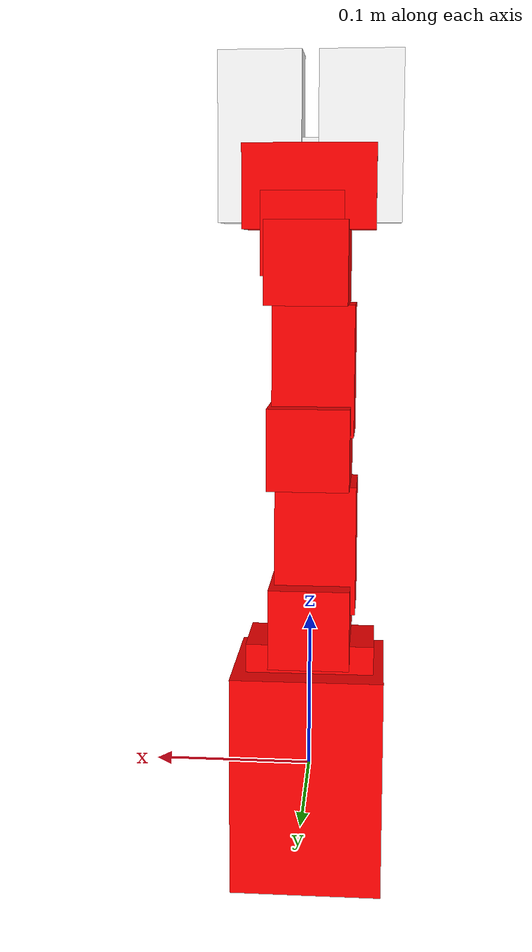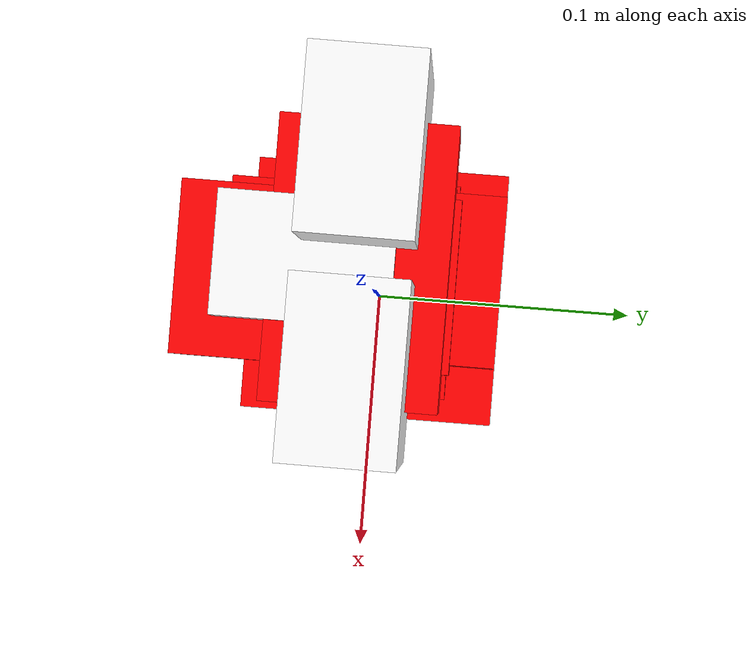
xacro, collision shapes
<?xml version="1.0"?>
<robot xmlns:xacro="http://www.ros.org/wiki/xacro" name="arm">

  <xacro:include filename="$(find armando_description)/urdf/armando_hardware_interface.xacro"/>
  <xacro:include filename="$(find armando_gazebo)/urdf/armando_camera.xacro"/>

  <material name="red">
    <color rgba="1 0 0 1"/>
  </material>

  <material name="white">
    <color rgba="1 1 1 1"/>
  </material>

  <link name="base_link">
    <visual>
      <geometry>
        <mesh filename="package://armando_description/meshes/base_link.stl" scale="0.001 0.001 0.001"/>
      </geometry>
      <origin rpy="0 0 0" xyz="0 0 0"/>
      <material name="red"/>
    </visual>
    <collision>
     <geometry>
      <box size="0.095 0.095 0.14"/>
     </geometry>
      <origin rpy="0 0 0" xyz="0 0 0"/>
    </collision>
    <inertial>
      <mass value="0.1"/>
      <inertia ixx="1.06682889e+08" ixy="0.0" ixz="0.0" iyy="9.92165844e+07" iyz="0.0" izz="1.26939175e+08"/>
    </inertial>
  </link>

  <joint name="base_1_2" type="fixed">
    <parent link="base_link"/>
    <child link="base_turn"/>
    <origin xyz="-0.0011 -0.011 0.05"/>
  </joint>

  <link name="base_turn">
    <visual>
      <geometry>
        <mesh filename="package://armando_description/meshes/base_turn.stl" scale="0.001 0.001 0.001"/>
      </geometry>
      <origin rpy="0 0 0" xyz="0 0 0"/>
      <material name="red"/>
    </visual>
    <collision>
     <geometry>
      <box size="0.05 0.08 0.05"/>
     </geometry>
     <origin rpy="0 0 0" xyz="0 0 0"/>
    </collision>
    <inertial>
      <mass value="0.1"/>
      <inertia ixx="1.35223008e+07" ixy="0.0" ixz="0.0" iyy="8.13814925e+06" iyz="0.0" izz="2.14903814e+07"/>
    </inertial>
  </link>

  <joint name="j0" type="revolute">
    <parent link="base_turn"/>
    <child link="base_turn_rot"/>
    <origin xyz="-0.0 0.0155 0.013" rpy = "0 0 -1.57"/>
    <axis xyz="0 0 1" />
    <limit effort="300" velocity="0.1" lower="-2.57" upper="2.57"/>
  </joint>

  <link name="base_turn_rot">
    <visual>
      <geometry>
        <mesh filename="package://armando_description/meshes/base_turn_table_rot.stl" scale="0.001 0.001 0.001"/>
      </geometry>
      <material name="red"/>
    </visual>
    <collision>
     <geometry>
      <box size="0.05 0.08 0.05"/>
     </geometry>
     <origin rpy="0 0 0" xyz="0 0 0"/>
    </collision>
    <inertial>
      <mass value="0.1"/>
      <inertia ixx="0.001" ixy="0.0" ixz="0.0" iyy="0.001" iyz="0.0" izz="0.001"/>
    </inertial>
  </link>

  <joint name="base_turn_rot_dyn2" type="fixed">
    <parent link="base_turn_rot"/>
    <child link="dyn2"/>
    <origin xyz="0 0 0.0385" rpy="0 1.57 1.57 "/>
  </joint>

  <link name="dyn2">
    <visual>
      <geometry>
        <mesh filename="package://armando_description/meshes/dyn.stl" scale="0.01 0.01 0.01"/>
      </geometry>
      <origin rpy="0 0 0" xyz="0 0 0"/>
      <material name="red"/>
    </visual>
    <collision>
     <geometry>
      <box size="0.05 0.08 0.05"/>
     </geometry>
     <origin rpy="0 0 0" xyz="0 0 0"/>
    </collision>
     <inertial>
      <mass value="0.1"/>
      <inertia ixx="6.90013881e-05" ixy="0.0" ixz="0.0" iyy="1.24554875e-04" iyz="0.0" izz="1.04295793e-04"/>
    </inertial>
  </link>

  <joint name="j1" type="revolute">
    <parent link="dyn2"/>
    <child link="dyn2_r"/>
    <origin xyz="0 0 0.0" rpy="0 0 0"/>
    <axis xyz="0 0 1" />
    <limit effort="300" velocity="0.1" lower="-3.14" upper="3.14"/>
  </joint>

  <link name="dyn2_r">
    <inertial>
      <mass value="0.0001" />
      <inertia ixx="1e-6" ixy="0" ixz="0" iyy="1e-6" iyz="0" izz="1e-6" />
    </inertial>
  </link>

  <joint name="dyn2_f4" type="fixed">
    <parent link="dyn2_r"/>
    <child link="f4"/>
    <origin xyz="-0.047 0.0 -0.003" rpy="0 1.57 1.57"/>
  </joint>

  <link name="f4">
    <visual>
      <geometry>
        <mesh filename="package://armando_description/meshes/f4_n_f3.stl" scale="0.001 0.001 0.001"/>
      </geometry>
      <origin rpy="0 0 0" xyz="0 0 0"/>
      <material name="red"/>
    </visual>
    <collision>
     <geometry>
      <box size="0.05 0.08 0.05"/>
     </geometry>
     <origin rpy="0 0 0" xyz="0 0 0"/>
    </collision>
     <inertial>
      <mass value="0.1"/>
      <inertia ixx="6.90013881e-05" ixy="0.0" ixz="0.0" iyy="1.24554875e-04" iyz="0.0" izz="1.04295793e-04"/>
    </inertial>
  </link>

  <joint name="d4_dyn3" type="fixed">
    <parent link="f4"/>
    <child link="dyn3"/>
    <origin xyz="-0.004 0.0645 0 " rpy="-1.57 3.14 1.57"/>
  </joint>

  <link name="dyn3">
    <visual>
      <geometry>
        <mesh filename="package://armando_description/meshes/dyn.stl" scale="0.01 0.01 0.01"/>
      </geometry>
      <origin rpy="0 0 0" xyz="0 0 0"/>
      <material name="red"/>
    </visual>
    <collision>
     <geometry>
      <box size="0.05 0.08 0.05"/>
     </geometry>
     <origin rpy="0 0 0" xyz="0 0 0"/>
    </collision>
     <inertial>
      <mass value="0.1"/>
      <inertia ixx="6.90013881e-05" ixy="0.0" ixz="0.0" iyy="1.24554875e-04" iyz="0.0" izz="1.04295793e-04"/>
    </inertial>
  </link>

  <joint name="j2" type="revolute">
    <parent link="dyn3"/>
    <child link="dyn3_r"/>
    <origin xyz="0 0 0.0" rpy="0 0 0"/>
    <axis xyz="0 0 1" />
    <limit effort="300" velocity="0.1" lower="-3.14" upper="3.14"/>
  </joint>

 <link name="dyn3_r">
    <inertial>
      <mass value="0.0001" />
      <inertia ixx="1e-6" ixy="0" ixz="0" iyy="1e-6" iyz="0" izz="1e-6" />
    </inertial>
  </link>

  <joint name="dyn3_f5" type="fixed">
    <parent link="dyn3_r"/>
    <child link="f5"/>
    <origin xyz="-0.046 -0.0 -0.002" rpy="1.57 1.57 3.1415 "/>
  </joint>

  <link name="f5">
    <visual>
      <geometry>
        <mesh filename="package://armando_description/meshes/f4_n_f3.stl" scale="0.001 0.001 0.001"/>
      </geometry>
      <origin rpy="0 0 0" xyz="0 0 0"/>
      <material name="red"/>
    </visual>
    <collision>
     <geometry>
      <box size="0.05 0.08 0.05"/>
     </geometry>
     <origin rpy="0 0 0" xyz="0 0 0"/>
    </collision>
    <inertial>
      <mass value="0.1"/>
      <inertia ixx="0.001" ixy="0.0" ixz="0.0" iyy="0.001" iyz="0.0" izz="0.001"/>
    </inertial>
  </link>

  <joint name="f5_dyn4" type="fixed">
    <parent link="f5"/>
    <child link="dyn4"/>
    <origin xyz="-0.004 0.065 -0.0" rpy="-1.57 3.1415 1.57 "/>
  </joint>

  <link name="dyn4">
    <visual>
      <geometry>
        <mesh filename="package://armando_description/meshes/dyn.stl" scale="0.01 0.01 0.01"/>
      </geometry>
      <origin rpy="0 0 0" xyz="0 0 0"/>
      <material name="red"/>
    </visual>
    <collision>
     <geometry>
      <box size="0.05 0.08 0.05"/>
     </geometry>
     <origin rpy="0 0 0" xyz="0 0 0"/>
    </collision>
    <inertial>
      <mass value="0.1"/>
      <inertia ixx="6.90013881e-05" ixy="0.0" ixz="0.0" iyy="1.24554875e-04" iyz="0.0" izz="1.04295793e-04"/>
    </inertial>
  </link>

  <joint name="j3" type="revolute">
    <parent link="dyn4"/>
    <child link="dyn4_r"/>
    <origin xyz="0 0 0.0" rpy="0 0 0"/>
    <axis xyz="0 0 1" />
    <limit effort="300" velocity="0.1" lower="-3.14" upper="3.14"/>
  </joint>

  <link name="dyn4_r">
    <inertial>
      <mass value="0.0001" />
      <inertia ixx="1e-6" ixy="0" ixz="0" iyy="1e-6" iyz="0" izz="1e-6" />
    </inertial>
  </link>

  <joint name="f5_wrist" type="fixed">
    <parent link="dyn4_r"/>
    <child link="wrist"/>
    <origin xyz="-0.017 -0.013 0.003" rpy="1.57 1.57 -1.57"/>
  </joint>

  <link name="wrist">
    <visual>
      <geometry>
        <mesh filename="package://armando_description/meshes/wrist.stl" scale="0.001 0.001 0.001"/>
      </geometry>
      <origin rpy="0 0 0" xyz="0 0 0"/>
      <material name="red"/>
    </visual>
    <collision>
      <geometry>
       <box size="0.05 0.08 0.05"/>
      </geometry>
      <origin rpy="0 0 0" xyz="0 0 0"/>
    </collision>
     <inertial>
      <mass value="0.1"/>
      <inertia ixx="6.90013881e-05" ixy="0.0" ixz="0.0" iyy="1.24554875e-04" iyz="0.0" izz="1.04295793e-04"/>
    </inertial>
  </link>

  <joint name="wrist_dyn5" type="fixed">
    <parent link="wrist"/>
    <child link="dyn5"/>
    <origin xyz="0.0038 -0.013 0.0275" rpy="0 0 1.57"/>
  </joint>

  <link name="dyn5">
    <visual>
      <geometry>
        <mesh filename="package://armando_description/meshes/dyn.stl" scale="0.01 0.01 0.01"/>
      </geometry>
      <origin rpy="0 0 0" xyz="0 0 0"/>
      <material name="red"/>
    </visual>
    <collision>
     <geometry>
      <box size="0.05 0.08 0.05"/>
     </geometry>
     <origin rpy="0 0 0" xyz="0 0 0"/>
    </collision>
    <inertial>
      <mass value="0.1"/>
      <inertia ixx="6.90013881e-05" ixy="0.0" ixz="0.0" iyy="1.24554875e-04" iyz="0.0" izz="1.04295793e-04"/>
    </inertial>
  </link>

  <joint name="dyn5_dyn5_r" type="fixed">
    <parent link="dyn5"/>
    <child link="dyn5_r"/>
    <origin xyz="0 0 0.0" rpy="0 0 0"/>
  </joint>

  <link name="dyn5_r">
    <inertial>
      <mass value="0.0001" />
      <inertia ixx="1e-6" ixy="0" ixz="0" iyy="1e-6" iyz="0" izz="1e-6" />
    </inertial>
  </link>

  <joint name="wrist_rotate_dyn5" type="fixed">
    <parent link="dyn5_r"/>
    <child link="crawer_base"/>
    <origin xyz="0.015 0 0.019" rpy="0 0 1.57"/>
  </joint>

  <link name="crawer_base">
    <visual>
      <geometry>
        <mesh filename="package://armando_description/meshes/the_crawer_base.stl" scale="0.001 0.001 0.001"/>
      </geometry>
      <origin rpy="0 0 0" xyz="0 0 0"/>
      <material name="white"/>
    </visual>
    <collision>
      <geometry>
       <box size="0.035 0.05 0.02"/>
      </geometry>
      <origin rpy="0 0 0" xyz="0 0 0"/>
    </collision>
    <inertial>
      <mass value="0.1"/>
      <inertia ixx="6.90013881e-05" ixy="0.0" ixz="0.0" iyy="1.24554875e-04" iyz="0.0" izz="1.04295793e-04"/>
    </inertial>
  </link>

  <joint name="crawer_base_crawer_left" type="fixed">
    <parent link="crawer_base"/>
    <child link="crawer_left"/>
    <origin xyz="-0.03 0.015 0.01" rpy="0 -1.57 0"/>
  </joint>

  <link name="crawer_left">
    <visual>
      <geometry>
        <mesh filename="package://armando_description/meshes/the_crawer.stl" scale="0.001 0.001 0.001"/>
      </geometry>
      <origin rpy="0 0 0" xyz="0 0 0"/>
      <material name="white"/>
    </visual>
    <collision>
     <geometry>
      <box size="0.1 0.032 0.05"/>
     </geometry>
     <origin rpy="0 0 0" xyz="0 0 0"/>
    </collision>
    <inertial>
      <mass value="0.1"/>
      <inertia ixx="6.90013881e-05" ixy="0.0" ixz="0.0" iyy="1.24554875e-04" iyz="0.0" izz="1.04295793e-04"/>
    </inertial>
  </link>

  <joint name="crawer_base_crawer_right" type="fixed">
    <parent link="crawer_base"/>
    <child link="crawer_right"/>
    <origin xyz="0.03 0.015 0.01" rpy="3.1415 -1.57 0"/>
  </joint>

  <link name="crawer_right">
    <visual>
      <geometry>
        <mesh filename="package://armando_description/meshes/the_crawer.stl" scale="0.001 0.001 0.001"/>
      </geometry>
      <origin rpy="0 0 0" xyz="0 0 0"/>
      <material name="white"/>
    </visual>
    <collision>
     <geometry>
      <box size="0.1 0.032 0.05"/>
     </geometry>
     <origin rpy="0 0 0" xyz="0 0 0"/>
    </collision>
    <inertial>
      <mass value="0.1"/>
      <inertia ixx="6.90013881e-05" ixy="0.0" ixz="0.0" iyy="1.24554875e-04" iyz="0.0" izz="1.04295793e-04"/>
    </inertial>
  </link>

  <joint name="camera_joint" type="fixed">
    <parent link="base_link"/>
    <child link="camera_link"/>
    <origin xyz="0 0 0" rpy="0 0 0"/>
  </joint>

  <link name="camera_link">
    <visual>
      <geometry>
        <box size="0.0000010 0.00000003 0.00000003"/>
      </geometry>
      <material name="red"/>
    </visual>
  </link>

  <gazebo>
    <plugin filename="gz_ros2_control-system" name="ign_ros2_control::IgnitionROS2ControlPlugin">
    <parameters>$(find armando_description)/config/armando_controllers.yaml</parameters>
      <controller_manager_prefix_node_name>controller_manager</controller_manager_prefix_node_name>
    </plugin>
  </gazebo>

  <ros2_control name="HardwareInterface_Ignition" type="system">
   <hardware>
    <plugin>gz_ros2_control/GazeboSimSystem</plugin>
   </hardware>

   <xacro:joint_ros2_control name="j0" initial_pos="0.0"/>
   <xacro:joint_ros2_control name="j1" initial_pos="0.0"/>
   <xacro:joint_ros2_control name="j2" initial_pos="0.0"/>
   <xacro:joint_ros2_control name="j3" initial_pos="0.0"/>

  </ros2_control>

  <gazebo>
	<plugin filename="gz-sim-sensors-system" name="gz::sim::systems::Sensors">
	 <render_engine>ogre2</render_engine>
	</plugin>
  </gazebo>

  <xacro:armando_camera_macro
    parent_link="camera_link"
    topic_name="camera"
    width="320"
    height="240"
    fov="1.047"
    near="0.1"
    far="100"
    update_rate="30"/>

</robot>
